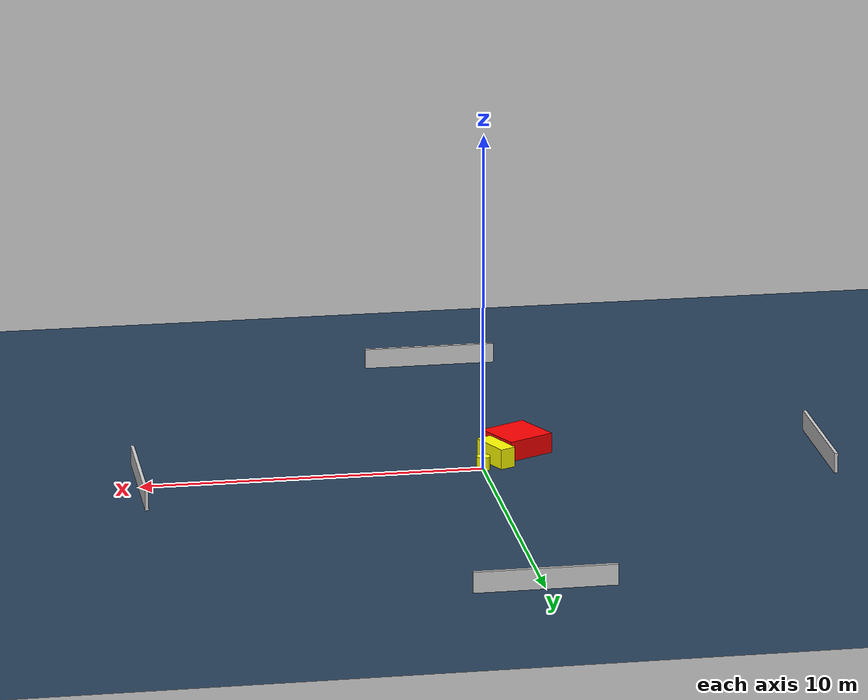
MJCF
<?xml version="1.0" ?>
<mujoco model="generated_environment">
  <option timestep="0.01" integrator="RK4" cone="elliptic"/>
  <default>
    <geom density="1"/>
  </default>
  <asset>
    <texture builtin="gradient" height="3072" name="skybox" rgb1="0.3 0.5 0.7" rgb2="0 0 0" type="skybox" width="512"/>
    <texture builtin="checker" height="300" name="groundplane" rgb1="0.2 0.3 0.4" rgb2="0.1 0.2 0.3" type="2d" width="300"/>
    <material name="groundplane" reflectance="0.2" texrepeat="5 5" texture="groundplane"/>
  </asset>
  <worldbody>
    <light dir="0 0 -1" directional="true" pos="0 0 1.5"/>
    <geom condim="3" friction="0.5 0.005 0.001" material="groundplane" name="floor" pos="0 0 0" size="0 0 0.05" type="plane"/>
    <body name="walls">
      <geom name="wall_1" condim="4" pos="-10.0 0.0 0.3" rgba="0.800000011920929 0.800000011920929 0.800000011920929 1.0" size="0.05 2.0 0.3" type="box"/>
      <geom name="wall_2" condim="4" pos="10.0 0.0 0.3" rgba="0.800000011920929 0.800000011920929 0.800000011920929 1.0" size="0.05 2.0 0.3" type="box"/>
      <geom name="wall_3" condim="4" pos="0.0 -10.0 0.3" rgba="0.800000011920929 0.800000011920929 0.800000011920929 1.0" size="2.0 0.05 0.3" type="box"/>
      <geom name="wall_4" condim="4" pos="0.0 10.0 0.3" rgba="0.800000011920929 0.800000011920929 0.800000011920929 1.0" size="2.0 0.05 0.3" type="box"/>
    </body>
    <body name="robot">
      <joint name="joint_x" type="slide" pos="0 0 0" axis="1 0 0"/>
      <joint name="joint_y" type="slide" pos="0 0 0" axis="0 1 0"/>
      <geom name="robot" type="cylinder" pos="0.0 0.0 0.2" size="0.2 0.2 0.0" mass="5.0" friction="1.0 0.005 0.0001" condim="4" rgba="1.0 1.0 0.0 1.0"/>
    </body>
    <body name="obstacle_1_movable">
      <geom name="obstacle_1_movable" condim="4" pos="-0.4570731314662338 -0.5360371793790142 0.3" euler="0 0 294.7220144128431" friction="0.0 0.005 0.001" rgba="1.0 1.0 0.0 1.0" size="0.6263106367910127 0.2423315169131785 0.3" type="box" mass="0.1"/>
      <joint type="free"/>
    </body>
    <body name="obstacle_2_static">
      <geom name="obstacle_2_static" condim="4" pos="-1.239967369696038 -1.4672140116060781 0.3" euler="0 0 296.3184489126804" friction="0.0 0.005 0.001" rgba="1.0 0.0 0.0 1.0" size="0.7208124692380704 0.735838152247775 0.3" type="box"/>
    </body>
  </worldbody>
  <actuator>
    <motor name="actuator_x" joint="joint_x" gear="1" ctrlrange="-1 1"/>
    <motor name="actuator_y" joint="joint_y" gear="1" ctrlrange="-1 1"/>
  </actuator>
</mujoco>
